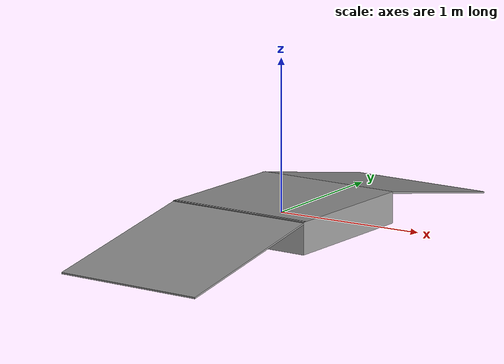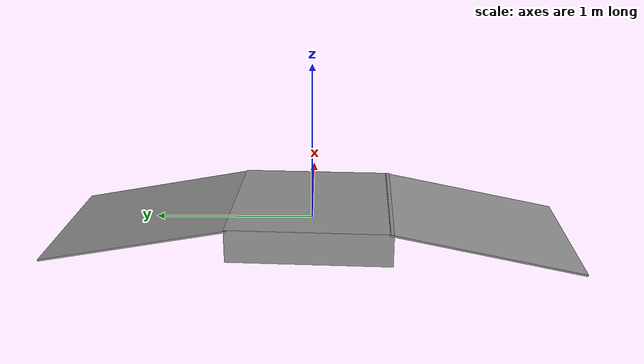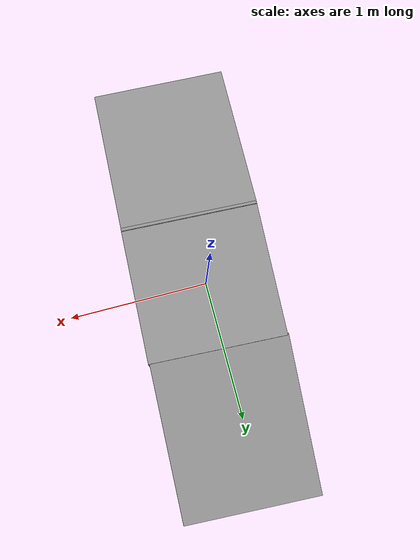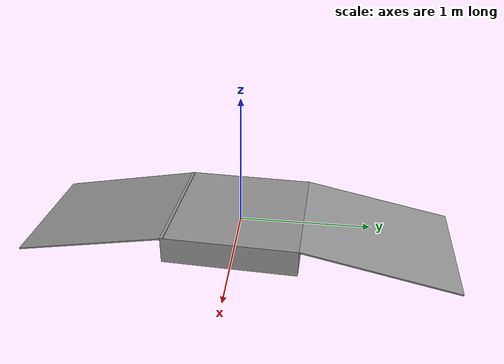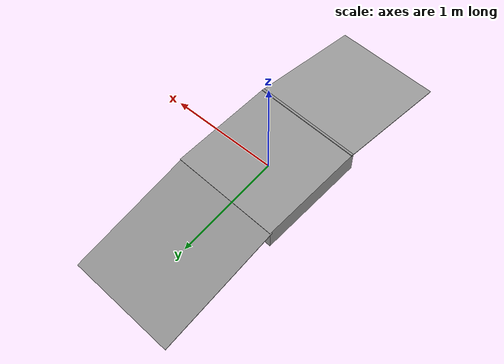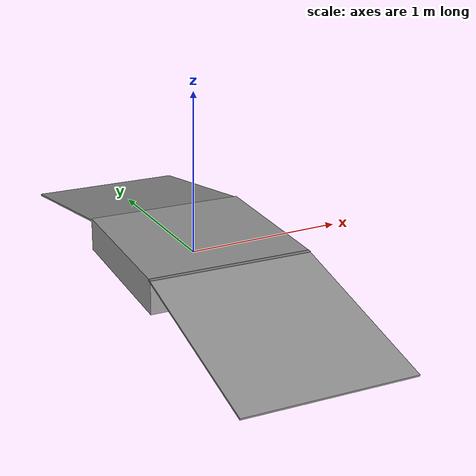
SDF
<?xml version="1.0"?>
<sdf version="1.7">
  <model name="ramp">
    <pose>0 0 0 0 0 0</pose>

<link name='link_0'>
        <inertial>
          <mass>100</mass>
          <inertia>
            <ixx>8.69346</ixx>
            <ixy>0</ixy>
            <ixz>0</ixz>
            <iyy>8.69346</iyy>
            <iyz>0</iyz>
            <izz>16.666699999999999</izz>
          </inertia>
          <pose>0 0 0 0 0 0</pose>
        </inertial>
        <pose>0.022429999999999999 -0.0047190000000000001 0.0083920000000000002 0 0 -0.048312000000000001</pose>
        <self_collide>false</self_collide>
        <enable_wind>false</enable_wind>
        <kinematic>false</kinematic>
        <gravity>true</gravity>
        <visual name='visual'>
          <pose>0 0 0 0 0 0</pose>
          <geometry>
            <box>
              <size>1 1 0.20788300000000001</size>
            </box>
          </geometry>
          <material>
            <lighting>true</lighting>
            <script>
              <uri>file://media/materials/scripts/gazebo.material</uri>
              <name>Gazebo/Grey</name>
            </script>
            <shader type='pixel'>
              <normal_map>__default__</normal_map>
            </shader>
            <emissive>0 0 0 1</emissive>
            <ambient>0.300000012 0.300000012 0.300000012 1</ambient>
            <diffuse>0.699999988 0.699999988 0.699999988 1</diffuse>
            <specular>0.00999999978 0.00999999978 0.00999999978 1</specular>
          </material>
          <transparency>0</transparency>
          <cast_shadows>true</cast_shadows>
        </visual>
        <collision name='collision'>
          <laser_retro>0</laser_retro>
          <max_contacts>10</max_contacts>
          <pose>0 0 0 0 0 0</pose>
          <geometry>
            <box>
              <size>1 1 0.20788300000000001</size>
            </box>
          </geometry>
          <surface>
            <friction>
              <ode>
                <mu>1</mu>
                <mu2>1</mu2>
                <fdir1>0 0 0</fdir1>
                <slip1>0</slip1>
                <slip2>0</slip2>
              </ode>
              <torsional>
                <coefficient>1</coefficient>
                <patch_radius>0</patch_radius>
                <surface_radius>0</surface_radius>
                <use_patch_radius>true</use_patch_radius>
                <ode>
                  <slip>0</slip>
                </ode>
              </torsional>
            </friction>
            <bounce>
              <restitution_coefficient>0</restitution_coefficient>
              <threshold>1000000</threshold>
            </bounce>
            <contact>
              <collide_without_contact>false</collide_without_contact>
              <collide_without_contact_bitmask>1</collide_without_contact_bitmask>
              <collide_bitmask>1</collide_bitmask>
              <ode>
                <soft_cfm>0</soft_cfm>
                <soft_erp>0.20000000000000001</soft_erp>
                <kp>10000000000000</kp>
                <kd>1</kd>
                <max_vel>0.01</max_vel>
                <min_depth>0</min_depth>
              </ode>
              <bullet>
                <split_impulse>true</split_impulse>
                <split_impulse_penetration_threshold>-0.01</split_impulse_penetration_threshold>
                <soft_cfm>0</soft_cfm>
                <soft_erp>0.20000000000000001</soft_erp>
                <kp>10000000000000</kp>
                <kd>1</kd>
              </bullet>
            </contact>
          </surface>
        </collision>
      </link>
      <link name='link_1'>
        <inertial>
          <mass>50</mass>
          <inertia>
            <ixx>5.7244999999999999</ixx>
            <ixy>0</ixy>
            <ixz>0</ixz>
            <iyy>4.1671199999999997</iyy>
            <iyz>0</iyz>
            <izz>9.8907100000000003</izz>
          </inertia>
          <pose>0 0 0 0 0 0</pose>
        </inertial>
        <pose>-0.028115999999993591 -1.0520499999999986 -0.0041969999999999508 0.19279199999999999 -8.6736173798840355e-19 -0.046122999999999935</pose>
        <self_collide>false</self_collide>
        <enable_wind>false</enable_wind>
        <kinematic>false</kinematic>
        <gravity>true</gravity>
        <visual name='visual'>
          <pose>0 0 0 0 0 0</pose>
          <geometry>
            <box>
              <size>1 1.17208 0.010432</size>
            </box>
          </geometry>
          <material>
            <lighting>true</lighting>
            <script>
              <uri>file://media/materials/scripts/gazebo.material</uri>
              <name>Gazebo/Grey</name>
            </script>
            <shader type='pixel'>
              <normal_map>__default__</normal_map>
            </shader>
            <emissive>0 0 0 1</emissive>
          </material>
          <transparency>0</transparency>
          <cast_shadows>true</cast_shadows>
        </visual>
        <collision name='collision'>
          <laser_retro>0</laser_retro>
          <max_contacts>10</max_contacts>
          <pose>0 0 0 0 0 0</pose>
          <geometry>
            <box>
              <size>1 1.17208 0.010432</size>
            </box>
          </geometry>
          <surface>
            <friction>
              <ode>
                <mu>1</mu>
                <mu2>1</mu2>
                <fdir1>0 0 0</fdir1>
                <slip1>0</slip1>
                <slip2>0</slip2>
              </ode>
              <torsional>
                <coefficient>1</coefficient>
                <patch_radius>0</patch_radius>
                <surface_radius>0</surface_radius>
                <use_patch_radius>true</use_patch_radius>
                <ode>
                  <slip>0</slip>
                </ode>
              </torsional>
            </friction>
            <bounce>
              <restitution_coefficient>0</restitution_coefficient>
              <threshold>1000000</threshold>
            </bounce>
            <contact>
              <collide_without_contact>false</collide_without_contact>
              <collide_without_contact_bitmask>1</collide_without_contact_bitmask>
              <collide_bitmask>1</collide_bitmask>
              <ode>
                <soft_cfm>0</soft_cfm>
                <soft_erp>0.20000000000000001</soft_erp>
                <kp>10000000000000</kp>
                <kd>1</kd>
                <max_vel>0.01</max_vel>
                <min_depth>0</min_depth>
              </ode>
              <bullet>
                <split_impulse>true</split_impulse>
                <split_impulse_penetration_threshold>-0.01</split_impulse_penetration_threshold>
                <soft_cfm>0</soft_cfm>
                <soft_erp>0.20000000000000001</soft_erp>
                <kp>10000000000000</kp>
                <kd>1</kd>
              </bullet>
            </contact>
          </surface>
        </collision>
      </link>
      <link name='link_1_clone'>
        <inertial>
          <mass>50</mass>
          <inertia>
            <ixx>5.7244999999999999</ixx>
            <ixy>0</ixy>
            <ixz>0</ixz>
            <iyy>4.1671199999999997</iyy>
            <iyz>0</iyz>
            <izz>9.8907100000000003</izz>
          </inertia>
          <pose>0 0 0 0 0 0</pose>
        </inertial>
        <pose>0.064606000000004826 1.0540499999999988 -0.0041959999999999636 -0.19048000000000007 2.6020852139652106e-18 -0.046122999999999879</pose>
        <self_collide>false</self_collide>
        <enable_wind>false</enable_wind>
        <kinematic>false</kinematic>
        <gravity>true</gravity>
        <visual name='visual'>
          <pose>0 0 0 0 0 0</pose>
          <geometry>
            <box>
              <size>1 1.17208 0.010432</size>
            </box>
          </geometry>
          <material>
            <lighting>true</lighting>
            <script>
              <uri>file://media/materials/scripts/gazebo.material</uri>
              <name>Gazebo/Grey</name>
            </script>
            <shader type='pixel'>
              <normal_map>__default__</normal_map>
            </shader>
            <emissive>0 0 0 1</emissive>
          </material>
          <transparency>0</transparency>
          <cast_shadows>true</cast_shadows>
        </visual>
        <collision name='collision'>
          <laser_retro>0</laser_retro>
          <max_contacts>10</max_contacts>
          <pose>0 0 0 0 0 0</pose>
          <geometry>
            <box>
              <size>1 1.17208 0.010432</size>
            </box>
          </geometry>
          <surface>
            <friction>
              <ode>
                <mu>1</mu>
                <mu2>1</mu2>
                <fdir1>0 0 0</fdir1>
                <slip1>0</slip1>
                <slip2>0</slip2>
              </ode>
              <torsional>
                <coefficient>1</coefficient>
                <patch_radius>0</patch_radius>
                <surface_radius>0</surface_radius>
                <use_patch_radius>true</use_patch_radius>
                <ode>
                  <slip>0</slip>
                </ode>
              </torsional>
            </friction>
            <bounce>
              <restitution_coefficient>0</restitution_coefficient>
              <threshold>1000000</threshold>
            </bounce>
            <contact>
              <collide_without_contact>false</collide_without_contact>
              <collide_without_contact_bitmask>1</collide_without_contact_bitmask>
              <collide_bitmask>1</collide_bitmask>
              <ode>
                <soft_cfm>0</soft_cfm>
                <soft_erp>0.20000000000000001</soft_erp>
                <kp>10000000000000</kp>
                <kd>1</kd>
                <max_vel>0.01</max_vel>
                <min_depth>0</min_depth>
              </ode>
              <bullet>
                <split_impulse>true</split_impulse>
                <split_impulse_penetration_threshold>-0.01</split_impulse_penetration_threshold>
                <soft_cfm>0</soft_cfm>
                <soft_erp>0.20000000000000001</soft_erp>
                <kp>10000000000000</kp>
                <kd>1</kd>
              </bullet>
            </contact>
          </surface>
        </collision>
      </link>
      <joint name='link_0_JOINT_1' type='fixed'>
        <parent>link_0</parent>
        <child>link_1</child>
        <pose>2.4286128663675299e-17 4.4408920985006262e-16 5.5511151231257827e-17 -4.0657581468206416e-20 2.6020852139652106e-18 -5.2897245787002938e-38</pose>
        <physics>
          <ode>
            <limit>
              <cfm>0</cfm>
              <erp>0.20000000000000001</erp>
            </limit>
            <suspension>
              <cfm>0</cfm>
              <erp>0.20000000000000001</erp>
            </suspension>
          </ode>
        </physics>
      </joint>
      <joint name='link_0_JOINT_2' type='fixed'>
        <parent>link_0</parent>
        <child>link_1_clone</child>
        <pose>-1.3877787807814457e-17 -6.6613381477509392e-16 0 0 -8.6736173798840355e-19 0</pose>
        <physics>
          <ode>
            <limit>
              <cfm>0</cfm>
              <erp>0.20000000000000001</erp>
            </limit>
            <suspension>
              <cfm>0</cfm>
              <erp>0.20000000000000001</erp>
            </suspension>
          </ode>
        </physics>
      </joint>
      <static>false</static>
      <allow_auto_disable>true</allow_auto_disable>
      <pose>16.036802274808394 -1.5646306269891335 0.12093784596940542 -0.00040752714961329195 1.8809761746657975e-05 -4.5353765025061412e-09</pose>
      <self_collide>false</self_collide>
  </model>
</sdf>
